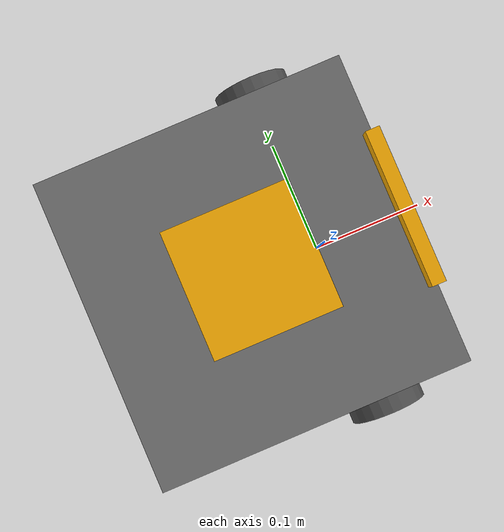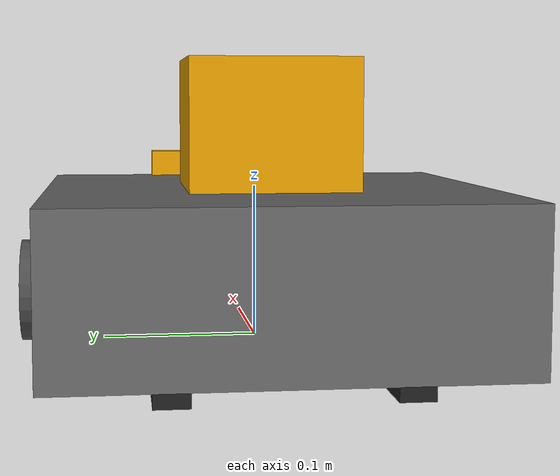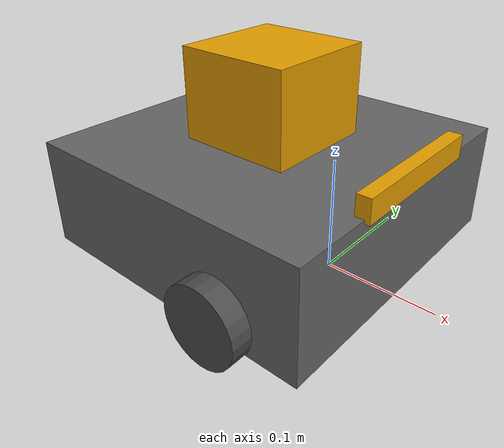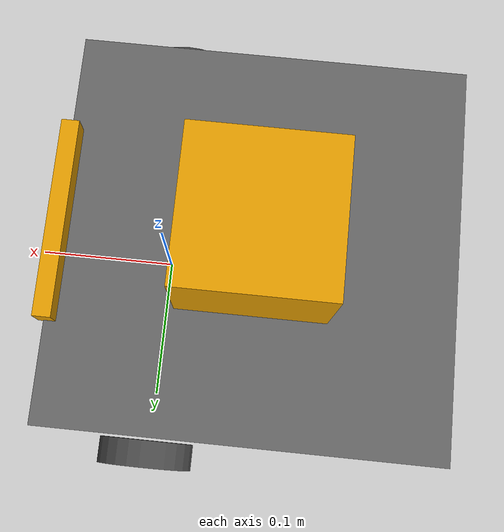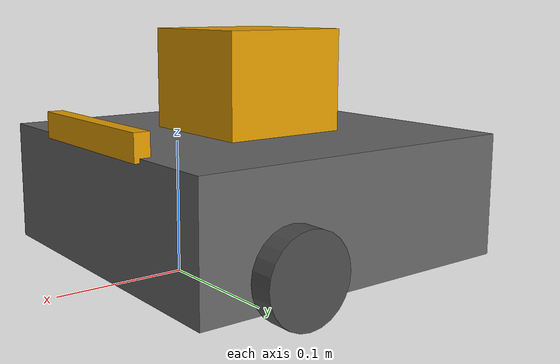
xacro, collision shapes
<?xml version="1.0" ?>
<robot name="turtlebot3_waffle" xmlns:xacro="http://ros.org/wiki/xacro">
  <xacro:include filename="$(find terprescue)/models/turtlebot3/common_properties.xacro"/>
  <xacro:include filename="$(find terprescue)/models/turtlebot3/turtlebot3_waffle.gazebo.xacro"/>
  <xacro:include filename="$(find terprescue)/models/turtlebot3/sensors/hokuyo/hokuyo.urdf.xacro"/>
  <sensor_hokuyo parent="base_link"/>

  <xacro:property name="r200_cam_rgb_px" value="0.005"/>
  <xacro:property name="r200_cam_rgb_py" value="0.018"/>
  <xacro:property name="r200_cam_rgb_pz" value="0.013"/>
  <xacro:property name="r200_cam_depth_offset" value="0.01"/>

  <link name="base_footprint"/>

  <joint name="base_joint" type="fixed">
    <parent link="base_footprint"/>
    <child link="base_link" />
    <origin xyz="0 0 0.010" rpy="0 0 0"/>
  </joint>

  <link name="base_link">
    <visual>
      <origin xyz="-0.064 0 0.0" rpy="0 0 0"/>
      <geometry>
        <mesh filename="package://turtlebot3_description/meshes/bases/waffle_base.stl" scale="0.001 0.001 0.001"/>
      </geometry>
      <material name="light_black"/>
    </visual>

    <collision>
      <origin xyz="-0.064 0 0.047" rpy="0 0 0"/>
      <geometry>
        <box size="0.266 0.266 0.094"/>
      </geometry>
    </collision>

    <inertial>
      <origin xyz="0 0 0" rpy="0 0 0"/>
      <mass value="1.3729096e+00"/>
      <inertia ixx="8.7002718e-03" ixy="-4.7576583e-05" ixz="1.1160499e-04"
               iyy="8.6195418e-03" iyz="-3.5422299e-06"
               izz="1.4612727e-02" />
    </inertial>
  </link>

  <joint name="wheel_left_joint" type="continuous">
    <parent link="base_link"/>
    <child link="wheel_left_link"/>
    <origin xyz="0.0 0.144 0.023" rpy="-1.57 0 0"/>
    <axis xyz="0 0 1"/>
  </joint>

  <link name="wheel_left_link">
    <visual>
      <origin xyz="0 0 0" rpy="1.57 0 0"/>
      <geometry>
        <mesh filename="package://turtlebot3_description/meshes/wheels/left_tire.stl" scale="0.001 0.001 0.001"/>
      </geometry>
      <material name="dark"/>
    </visual>

    <collision>
      <origin xyz="0 0 0" rpy="0 0 0"/>
      <geometry>
        <cylinder length="0.018" radius="0.033"/>
      </geometry>
    </collision>

    <inertial>
      <origin xyz="0 0 0" />
      <mass value="2.8498940e-02" />
      <inertia ixx="1.1175580e-05" ixy="-4.2369783e-11" ixz="-5.9381719e-09"
               iyy="1.1192413e-05" iyz="-1.4400107e-11"
               izz="2.0712558e-05" />
      </inertial>
  </link>

  <joint name="wheel_right_joint" type="continuous">
    <parent link="base_link"/>
    <child link="wheel_right_link"/>
    <origin xyz="0.0 -0.144 0.023" rpy="-1.57 0 0"/>
    <axis xyz="0 0 1"/>
  </joint>

  <link name="wheel_right_link">
    <visual>
      <origin xyz="0 0 0" rpy="1.57 0 0"/>
      <geometry>
        <mesh filename="package://turtlebot3_description/meshes/wheels/right_tire.stl" scale="0.001 0.001 0.001"/>
      </geometry>
      <material name="dark"/>
    </visual>

    <collision>
      <origin xyz="0 0 0" rpy="0 0 0"/>
      <geometry>
        <cylinder length="0.018" radius="0.033"/>
      </geometry>
    </collision>

    <inertial>
      <origin xyz="0 0 0" />
      <mass value="2.8498940e-02" />
      <inertia ixx="1.1175580e-05" ixy="-4.2369783e-11" ixz="-5.9381719e-09"
               iyy="1.1192413e-05" iyz="-1.4400107e-11"
               izz="2.0712558e-05" />
      </inertial>
  </link>

  <joint name="caster_back_right_joint" type="fixed">
    <parent link="base_link"/>
    <child link="caster_back_right_link"/>
    <origin xyz="-0.177 -0.064 -0.004" rpy="-1.57 0 0"/>
  </joint>

  <link name="caster_back_right_link">
    <collision>
      <origin xyz="0 0.001 0" rpy="0 0 0"/>
      <geometry>
        <box size="0.030 0.009 0.020"/>
      </geometry>
    </collision>

    <inertial>
      <origin xyz="0 0 0" />
      <mass value="0.005" />
      <inertia ixx="0.001" ixy="0.0" ixz="0.0"
               iyy="0.001" iyz="0.0"
               izz="0.001" />
    </inertial>
  </link>

  <joint name="caster_back_left_joint" type="fixed">
    <parent link="base_link"/>
    <child link="caster_back_left_link"/>
    <origin xyz="-0.177 0.064 -0.004" rpy="-1.57 0 0"/>
  </joint>

  <link name="caster_back_left_link">
    <collision>
      <origin xyz="0 0.001 0" rpy="0 0 0"/>
      <geometry>
        <box size="0.030 0.009 0.020"/>
      </geometry>
    </collision>

    <inertial>
      <origin xyz="0 0 0" />
      <mass value="0.005" />
      <inertia ixx="0.001" ixy="0.0" ixz="0.0"
               iyy="0.001" iyz="0.0"
               izz="0.001" />
    </inertial>
  </link>

  <joint name="imu_joint" type="fixed">
    <parent link="base_link"/>
    <child link="imu_link"/>
    <origin xyz="0.0 0 0.068" rpy="0 0 0"/>
  </joint>

  <link name="imu_link"/>

  <joint name="camera_joint" type="fixed">
    <origin xyz="0.064 -0.065 0.094" rpy="0 0 0"/>
    <parent link="base_link"/>
    <child link="camera_link"/>
  </joint>

  <link name="camera_link">
    <visual>
     <origin xyz="0 0 0" rpy="1.57 0 1.57"/>
      <geometry>
       <mesh filename="package://turtlebot3_description/meshes/sensors/r200.dae" />
      </geometry>
    </visual>
    <collision>
      <origin xyz="0.003 0.065 0.007" rpy="0 0 0"/>
      <geometry>
        <box size="0.012 0.132 0.020"/>
      </geometry>
    </collision>

    <!-- This inertial field needs doesn't contain reliable data!! -->
  </link>

  <joint name="camera_rgb_joint" type="fixed">
    <origin xyz="${r200_cam_rgb_px} ${r200_cam_rgb_py} ${r200_cam_rgb_pz}" rpy="0 0 0"/>
    <parent link="camera_link"/>
    <child link="camera_rgb_frame"/>
  </joint>
  <link name="camera_rgb_frame"/>

  <joint name="camera_rgb_optical_joint" type="fixed">
    <origin xyz="0 0 0" rpy="-1.57 0 -1.57"/>
    <parent link="camera_rgb_frame"/>
    <child link="camera_rgb_optical_frame"/>
  </joint>
  <link name="camera_rgb_optical_frame"/>

  <joint name="camera_depth_joint" type="fixed">
    <origin xyz="${r200_cam_rgb_px} ${r200_cam_rgb_py + r200_cam_depth_offset} ${r200_cam_rgb_pz}" rpy="0 0 0"/>
    <parent link="camera_link"/>
    <child link="camera_depth_frame"/>
  </joint>
  <link name="camera_depth_frame"/>

  <joint name="camera_depth_optical_joint" type="fixed">
    <origin xyz="0 0 0" rpy="-1.57 0 -1.57"/>
    <parent link="camera_depth_frame"/>
    <child link="camera_depth_optical_frame"/>
  </joint>
  <link name="camera_depth_optical_frame"/>

</robot>

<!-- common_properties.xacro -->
<robot name="xacro_properties" xmlns:xacro="http://ros.org/wiki/xacro">

  <!-- Init colour -->
  <material name="black">
      <color rgba="0.0 0.0 0.0 1.0"/>
  </material>

  <material name="dark">
    <color rgba="0.3 0.3 0.3 1.0"/>
  </material>
  <material name="light_black">
    <color rgba="0.4 0.4 0.4 1.0"/>
  </material>

  <material name="blue">
    <color rgba="0.0 0.0 0.8 1.0"/>
  </material>

  <material name="green">
    <color rgba="0.0 0.8 0.0 1.0"/>
  </material>

  <material name="grey">
    <color rgba="0.5 0.5 0.5 1.0"/>
  </material>

  <material name="orange">
    <color rgba="${255/255} ${108/255} ${10/255} 1.0"/>
  </material>

  <material name="brown">
    <color rgba="${222/255} ${207/255} ${195/255} 1.0"/>
  </material>

  <material name="red">
    <color rgba="0.8 0.0 0.0 1.0"/>
  </material>

  <material name="white">
    <color rgba="1.0 1.0 1.0 1.0"/>
  </material>

</robot>

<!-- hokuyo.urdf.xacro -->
<robot name="sensor_hokuyo" xmlns:xacro="http://ros.org/wiki/xacro">
  <xacro:macro name="sensor_hokuyo" params="parent">
    <joint name="hokuyo_joint" type="fixed">
      <origin xyz="-0.064 0 0.122" rpy="0 0 0"/>
      <parent link="${parent}"/>
      <child link="hokuyo_link"/>
    </joint>

    <link name="hokuyo_link">
      <collision>
        <origin xyz="0 0 0" rpy="0 0 0"/>
        <geometry>
          <box size="0.1 0.1 0.1"/>
        </geometry>
      </collision>
      <visual>
        <origin xyz="0 0 0" rpy="0 0 0"/>
        <geometry>
          <mesh filename="$(find terprescue)/models/turtlebot3/sensors/hokuyo/hokuyo.dae"/>
        </geometry>
      </visual>
      <inertial>
        <mass value="1e-5" />
        <origin xyz="0 0 0" rpy="0 0 0"/>
        <inertia ixx="1e-6" ixy="0" ixz="0" iyy="1e-6" iyz="0" izz="1e-6" />
      </inertial>
    </link>
     <!-- Hokuyo sensor for simulation -->
     <turtlebot_sim_laser_range_finder/>
  </xacro:macro>

  <xacro:macro name="turtlebot_sim_laser_range_finder">
  <!-- ULM-30LX Hokuyo Laser Range Finder -->
    <gazebo reference="hokuyo_link">
      <sensor type="gpu_ray" name="head_hokuyo_sensor">
        <pose>0 0 0 0 0 0</pose>
        <visualize>true</visualize>
        <update_rate>40</update_rate>
        <ray>
          <scan>
            <horizontal>
              <samples>122</samples>
              <resolution>1</resolution>
              <min_angle>-0.61</min_angle>
              <max_angle>0.61</max_angle>
            </horizontal>
          </scan>
          <range>
            <min>0.10</min>
            <max>10</max>
            <resolution>0.01</resolution>
          </range>
          <noise>
            <type>gaussian</type>
            <mean>0.0</mean>
            <stddev>0.01</stddev>
          </noise>
        </ray>
        <plugin name="gazebo_ros_head_hokuyo_controller" filename="libgazebo_ros_gpu_laser.so">
          <topicName>/scan</topicName>
          <frameName>hokuyo_link</frameName>
        </plugin>
      </sensor>
    </gazebo>
  </xacro:macro>
</robot>
